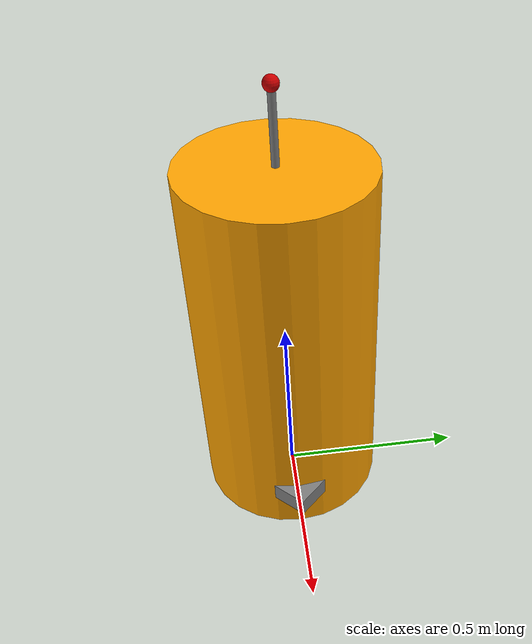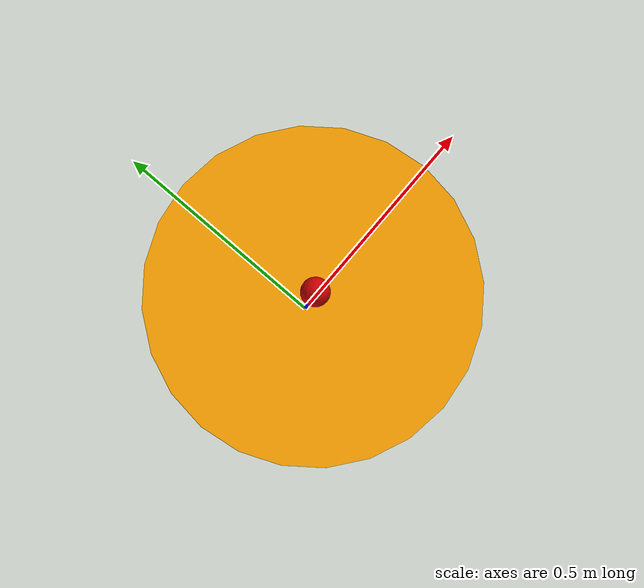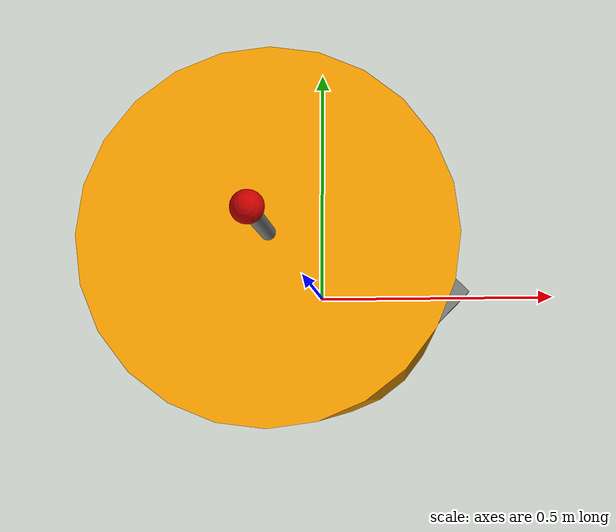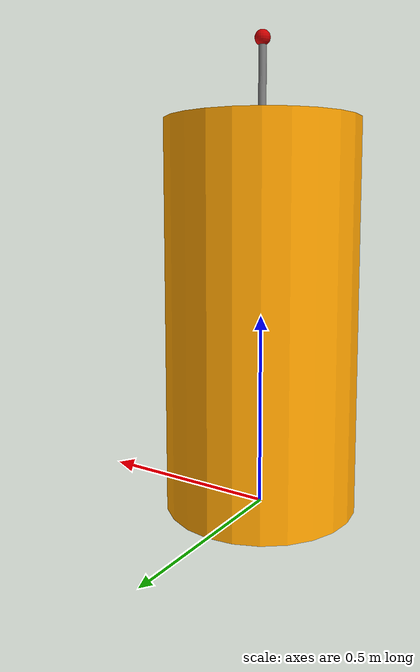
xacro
<?xml version="1.0"?>
<robot name="obstacle_bot" xmlns:xacro="http://ros.org/wiki/xacro">

  <xacro:property name="robot_height" value="1.0" />
  <xacro:property name="robot_radius" value="0.25" />
  <xacro:property name="antenna_len" value="0.2" />

  <!-- root link, on the ground just below the model origin -->
  <link name="base_footprint">
   <origin xyz="0 0 0" rpy="0 0 0" />
   <visual>
      <origin xyz="0 0 ${robot_height+(antenna_len/2)}" rpy="0 0 0" />
      <geometry>
        <cylinder radius="0.01" length="${antenna_len}" />
      </geometry>
      <material name="Grey">
        <color rgba="0.5 0.5 0.5 1" />
      </material>
    </visual>
  </link>
  <gazebo reference="base_footprint">
    <material value="Gazebo/Grey"/>
  </gazebo>

  <!-- the model -->
  <link name="base_link">
    <inertial>
      <mass value="50" />
      <!-- SUBTERRANIAN MASS -->
      <origin xyz="0 0 -${(robot_height/2)+0.05}" />
      <inertia ixx="50.0" ixy="0.0" ixz="0.0"
               iyy="50.0" iyz="0.0"
               izz="50.0" />
    </inertial>
    <visual>
      <origin xyz="0 0 0" rpy="0 0 1.5708"/>
      <geometry>
        <cylinder radius="${robot_radius}" length="${robot_height}" />
      </geometry>
      <material name="Orange">
        <color rgba="1 0.64 0 1" />
      </material>
    </visual>
    <collision>
      <origin xyz="0 0 0" />
      <geometry>
        <cylinder radius="${robot_radius}" length="${robot_height}" />
      </geometry>
    </collision>
  </link>
  <gazebo reference="base_link">
    <visual>
      <material>
        <script>
          <uri>file://media/materials/scripts/caution.material</uri>
          <name>Caution/Orange4</name>
        </script>
        <ambient>1 1 1 1</ambient>
      </material>
  </visual>
  </gazebo>

  <link name="antenna_link">
    <origin xyz="0 0 0" rpy="0 0 0" />
    <visual>
      <geometry>
        <sphere radius="0.02" />
      </geometry>
      <material name="Red">
        <color rgba="0.8 0 0 1" />
      </material>
    </visual>
    <collision>
      <origin xyz="0 0 0" />
      <geometry>
        <sphere radius="0.02" />
      </geometry>
    </collision>
  </link>
  <gazebo reference="antenna_link">
    <material value="Gazebo/Red"/>
  </gazebo>

  <link name="directional_link">
    <origin xyz="0 0 0" rpy="0 0 0" />
    <visual>
      <geometry>
        <box size="0.1 0.1 0.05" />
      </geometry>
      <material name="Grey">
        <color rgba="0.5 0.5 0.5 1" />
      </material>
    </visual>
    <collision>
      <origin xyz="0 0 0" />
      <geometry>
        <box size="0.1 0.1 0.05" />
      </geometry>
    </collision>
  </link>
  <gazebo reference="directional_link">
    <material value="Gazebo/Grey"/>
  </gazebo>

  <link name="scan_link">
    <visual>
      <geometry>
        <sphere radius="0.002" />
      </geometry>
      <material name="BlackFaded">
        <color rgba="0 0 0 0.25" />
      </material>
    </visual>
  </link>
  <gazebo reference="scan_link">
    <material value="Gazebo/Black"/>
    <sensor name='$(arg model_name)_laser' type='ray'>
      <pose frame=''>0 0 0 0 0 0</pose>
      <ray>
        <scan>
          <horizontal>
            <samples>220</samples>
            <resolution>1</resolution>
            <min_angle>-1.91986</min_angle>
            <max_angle>1.91986</max_angle>
          </horizontal>
          <vertical>
            <samples>1</samples>
            <min_angle>0</min_angle>
            <max_angle>0</max_angle>
          </vertical>
        </scan>
        <range>
          <min>0.08</min>
          <max>10.0</max>
          <resolution>0.01</resolution>
        </range>
      </ray>
      <plugin name='$(arg model_name)_laser' filename='libgazebo_ros_laser.so'>
        <!-- model_name is an argument sent to the top level xml file (when setting robot_description) -->
        <topicName>$(arg model_name)/scan</topicName>
        <frameName>$(arg model_name)/scan_link</frameName>
      </plugin>
      <always_on>1</always_on>
      <update_rate>30</update_rate>
      <visualize>0</visualize>
    </sensor>
  </gazebo>

  <joint name="base_link_joint" type="fixed">
    <origin xyz="0 0 ${robot_height/2}" rpy="0 0 0" />
    <parent link="base_footprint"/>
    <child link="base_link" />
  </joint>

  <joint name="antenna_link_joint" type="fixed">
    <origin xyz="0 0 ${robot_height+antenna_len}" rpy="0 0 0" />
    <parent link="base_footprint"/>
    <child link="antenna_link" />
  </joint>

  <joint name="directional_link_joint" type="fixed">
    <origin xyz="${robot_radius-0.01} 0 -${3*(robot_height/8)}" rpy="0 0 0.785398" />
    <parent link="base_link"/>
    <child link="directional_link" />
  </joint>

  <joint name="scan_link_joint" type="fixed">
    <origin xyz="0.04 -0.04 0" rpy="0 0 -0.785398" />
    <parent link="directional_link"/>
    <child link="scan_link" />
  </joint>

  <gazebo>
    <plugin name="object_controller" filename="libgazebo_ros_planar_move.so">
      <commandTopic>$(arg model_name)/cmd_vel</commandTopic>
      <odometryTopic>$(arg model_name)/odom</odometryTopic>
      <odometryFrame>$(arg model_name)/odom</odometryFrame>
      <odometryRate>20.0</odometryRate>
      <robotBaseFrame>$(arg model_name)/base_footprint</robotBaseFrame>
    </plugin>
  </gazebo>

</robot>
